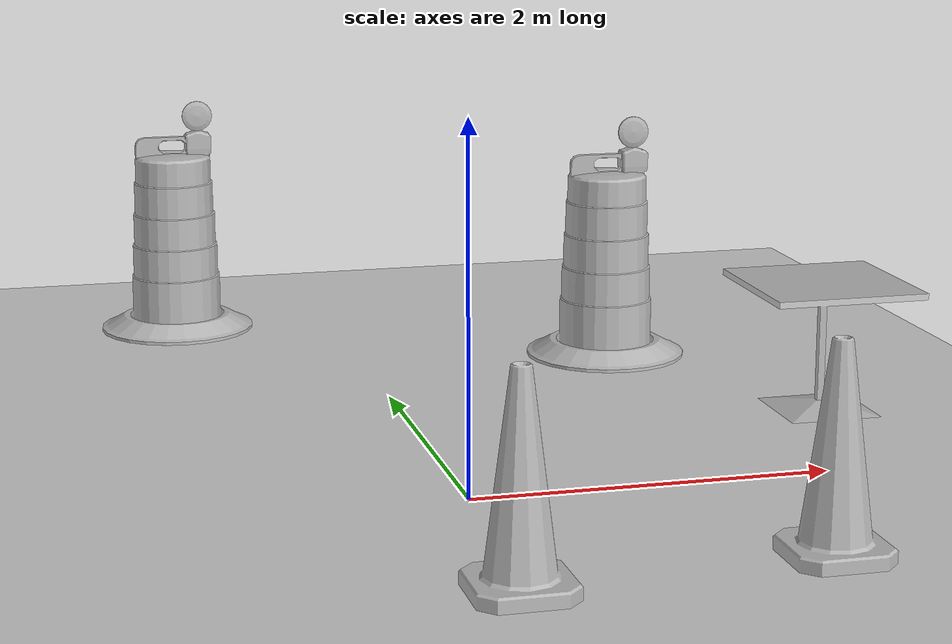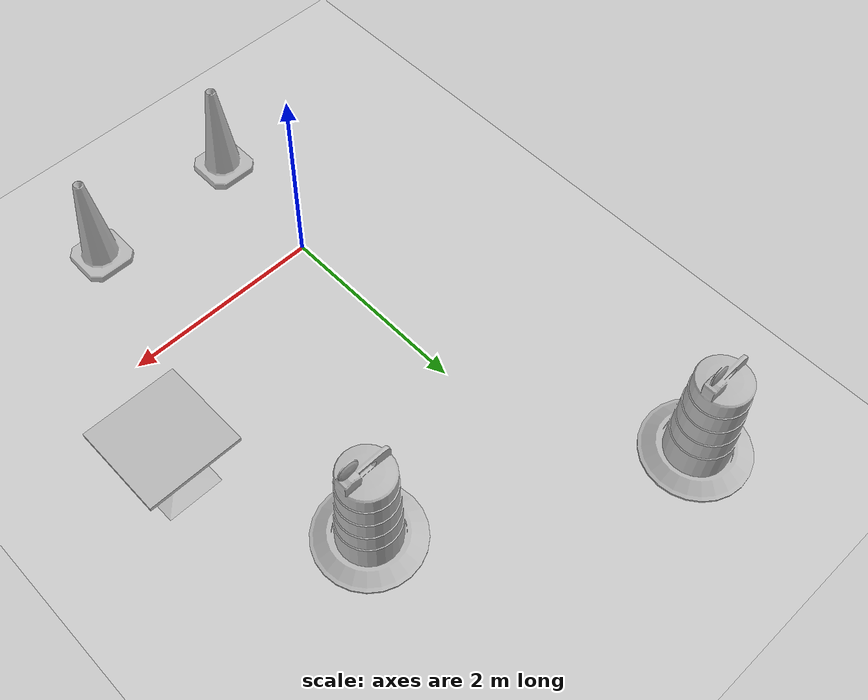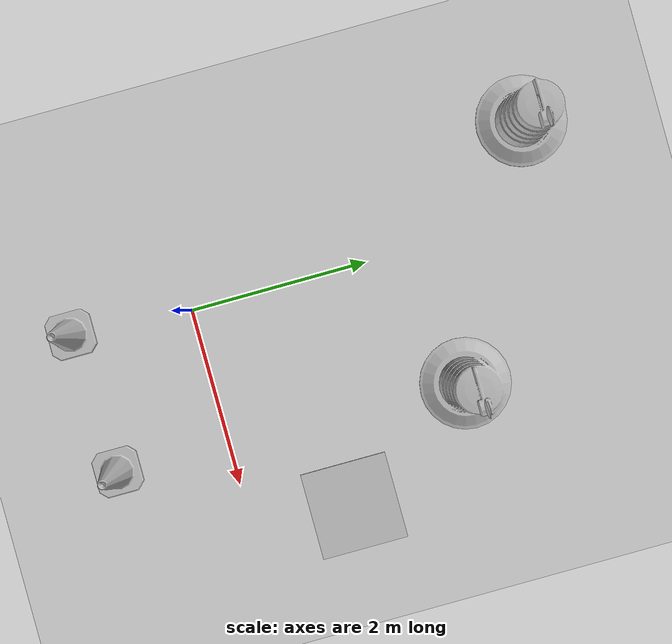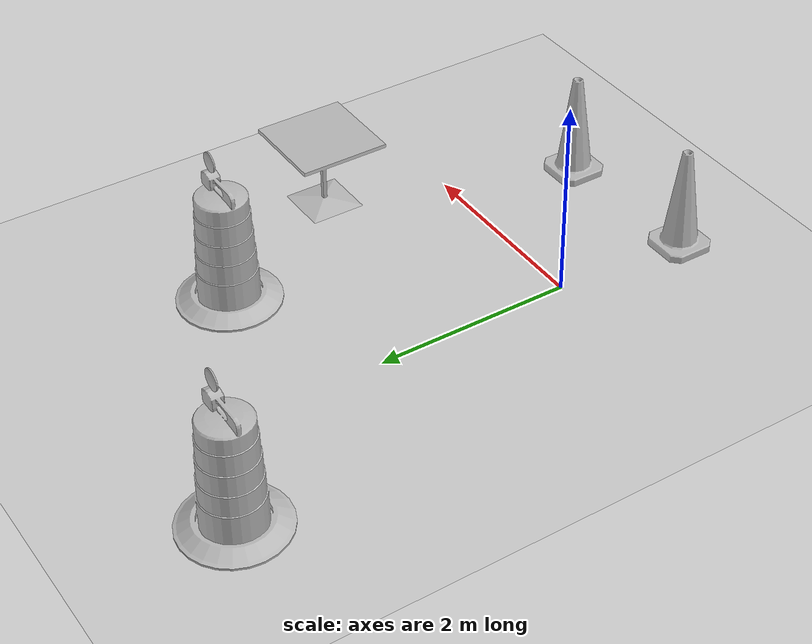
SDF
<sdf version="1.7">
 <world name="default">
  <light name="sun" type="directional">
   <pose>0 0 10 0 -0 0</pose>
   <diffuse>0.8 0.8 0.8 1</diffuse>
   <specular>0.2 0.2 0.2 1</specular>
   <attenuation>
    <range>1000</range>
    <constant>0.9</constant>
    <linear>0.01</linear>
    <quadratic>0.001</quadratic>
   </attenuation>
   <direction>-0.5 0.1 -0.9</direction>
   <spot><inner_angle>0</inner_angle><outer_angle>0</outer_angle><falloff>0</falloff></spot>
  </light>
  <model name="ground_plane">
   <static>1</static>
   <link name="link">
    <collision name="collision">
     <geometry><plane><normal>0 0 1</normal><size>100 100</size></plane></geometry>
     <surface>
      <contact><collide_bitmask>65535</collide_bitmask></contact>
      <friction><ode><mu>100</mu><mu2>50</mu2></ode></friction>
     </surface>
    </collision>
    <visual name="visual">
     <cast_shadows>0</cast_shadows>
     <geometry><plane><normal>0 0 1</normal><size>100 100</size></plane></geometry>
     <material>
      <script><uri>file://media/materials/scripts/gazebo.material</uri><name>Gazebo/Grey</name></script>
     </material>
    </visual>
   </link>
  </model>
  <gravity>0 0 -9.8</gravity>
  <magnetic_field>6e-06 2.3e-05 -4.2e-05</magnetic_field>
  <atmosphere type="adiabatic"/>
  <physics type="ode">
   <max_step_size>0.001</max_step_size>
   <real_time_factor>1</real_time_factor>
   <real_time_update_rate>1000</real_time_update_rate>
  </physics>
  <scene><ambient>0.4 0.4 0.4 1</ambient><background>0.7 0.7 0.7 1</background><shadows>1</shadows></scene>
  <audio><device>default</device></audio>
  <spherical_coordinates>
   <surface_model>EARTH_WGS84</surface_model>
   <latitude_deg>0</latitude_deg>
   <longitude_deg>0</longitude_deg>
   <elevation>0</elevation>
   <heading_deg>0</heading_deg>
  </spherical_coordinates>
  <model name="cafe_table">
   <static>1</static>
   <link name="link">
    <collision name="surface">
     <pose>0 0 0.755 0 -0 0</pose>
     <geometry><box><size>0.913 0.913 0.04</size></box></geometry>
    </collision>
    <collision name="column">
     <pose>0 0 0.37 0 -0 0</pose>
     <geometry><box><size>0.042 0.042 0.74</size></box></geometry>
    </collision>
    <collision name="base">
     <pose>0 0 0.02 0 -0 0</pose>
     <geometry><box><size>0.56 0.56 0.04</size></box></geometry>
    </collision>
    <visual name="visual">
     <geometry><mesh><uri>model://cafe_table/meshes/cafe_table.dae</uri></mesh></geometry>
    </visual>
   </link>
   <pose>2.44089 1.1604 0 0 -0 0</pose>
  </model>
  <model name="Construction Cone">
   <link name="link">
    <collision name="collision">
     <geometry>
      <mesh><scale>10 10 10</scale><uri>model://construction_cone/meshes/construction_cone.dae</uri></mesh>
     </geometry>
    </collision>
    <visual name="visual">
     <geometry>
      <mesh><scale>10 10 10</scale><uri>model://construction_cone/meshes/construction_cone.dae</uri></mesh>
     </geometry>
    </visual>
    <inertial>
     <inertia><ixx>1</ixx><ixy>0</ixy><ixz>0</ixz><iyy>1</iyy><iyz>0</iyz><izz>1</izz></inertia>
     <mass>1</mass>
    </inertial>
   </link>
   <pose>1.5035 -1.25914 -0 0 -1e-06 0</pose>
  </model>
  <model name="Construction Cone_0">
   <link name="link">
    <collision name="collision">
     <geometry>
      <mesh><scale>10 10 10</scale><uri>model://construction_cone/meshes/construction_cone.dae</uri></mesh>
     </geometry>
    </collision>
    <visual name="visual">
     <geometry>
      <mesh><scale>10 10 10</scale><uri>model://construction_cone/meshes/construction_cone.dae</uri></mesh>
     </geometry>
    </visual>
    <inertial>
     <inertia><ixx>1</ixx><ixy>0</ixy><ixz>0</ixz><iyy>1</iyy><iyz>0</iyz><izz>1</izz></inertia>
     <mass>1</mass>
    </inertial>
   </link>
   <pose>-0.092579 -1.35589 -0 0 -1e-06 0</pose>
  </model>
  <model name="Construction Barrel">
   <link name="link">
    <inertial>
     <pose>0 0 0.4 0 -0 0</pose>
     <mass>500</mass>
     <inertia><ixx>51.2096</ixx><iyy>51.2096</iyy><izz>25</izz><ixy>0</ixy><ixz>0</ixz><iyz>0</iyz></inertia>
    </inertial>
    <collision name="collision">
     <geometry><mesh><uri>model://construction_barrel/meshes/construction_barrel.dae</uri></mesh></geometry>
    </collision>
    <visual name="visual">
     <geometry><mesh><uri>model://construction_barrel/meshes/construction_barrel.dae</uri></mesh></geometry>
    </visual>
   </link>
   <pose>-1.04615 4.07037 -1e-06 -0 4e-06 -7e-06</pose>
  </model>
  <model name="Construction Barrel_0">
   <link name="link">
    <inertial>
     <pose>0 0 0.4 0 -0 0</pose>
     <mass>500</mass>
     <inertia><ixx>51.2096</ixx><iyy>51.2096</iyy><izz>25</izz><ixy>0</ixy><ixz>0</ixz><iyz>0</iyz></inertia>
    </inertial>
    <collision name="collision">
     <geometry><mesh><uri>model://construction_barrel/meshes/construction_barrel.dae</uri></mesh></geometry>
    </collision>
    <visual name="visual">
     <geometry><mesh><uri>model://construction_barrel/meshes/construction_barrel.dae</uri></mesh></geometry>
    </visual>
   </link>
   <pose>1.58623 2.70167 -1e-06 -8e-06 -2e-06 -4e-06</pose>
  </model>
 </world>
</sdf>
